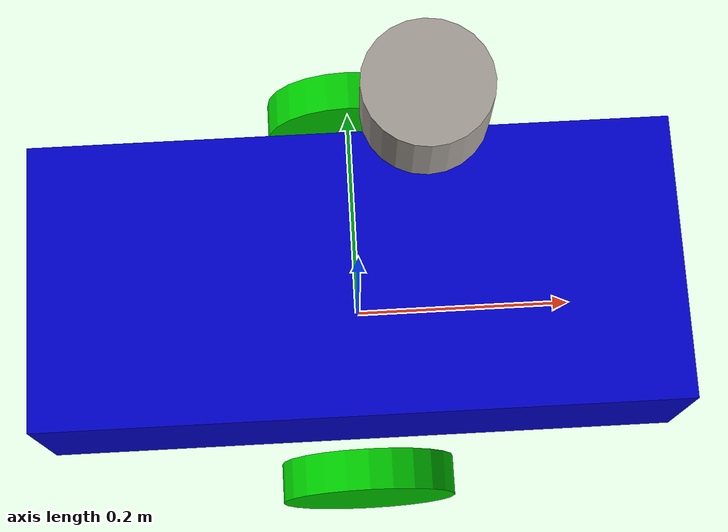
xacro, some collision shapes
<?xml version="1.0"?>
<robot name="a2dr"
    xmlns:xacro="http://ros.org/wiki/xacro">

    <xacro:include filename="$(find a2dr_model)/materials.xacro"/>
    <xacro:include filename="$(find a2dr_model)/sensors/ydlidar/ydlidar_g4.xacro"/>

    <link name="base_footprint"/>

    <joint name="base_fixed" type="fixed">
        <origin xyz="0 0 0.075" rpy="0 0 0"/>
        <parent link="base_footprint"/>
        <child link="base_link"/>
    </joint>

    <link name="base_link">
        <visual>
            <origin xyz="-0.002 0 0.02" rpy="0 0 0" />
            <geometry>
                <box size="0.56 0.25 0.13" />
            </geometry>
            <material name="blue"/>
        </visual>
        <collision name="chessis_collision">
            <origin xyz="-0.002 0 0" rpy="0 0 0" />
            <geometry>
                <box size="0.56 0.25 0.13" />
            </geometry>
            <surface>
                <friction>
                    <ode>
                        <mu>0.1</mu>
                        <mu2>0.1</mu2>
                        <slip1>1.0</slip1>
                        <slip2>1.0</slip2>
                    </ode>
                </friction>
            </surface>
        </collision>

        <inertial>
            <mass value="10.0"/>
            <origin xyz="-0.11 0 0" rpy=" 0 0 0"/>
            <xacro:box_inertia m="10.0" x="0.56" y="0.25" z="0.13"/>
        </inertial>
    </link>

    <joint name="right_wheel_joint" type="fixed">
        <origin xyz="0 -0.168 0" rpy="${PI/2} 0 0"/>
        <parent link="base_link"/>
        <child link="right_wheel"/>
    </joint>

    <joint name="left_wheel_joint" type="fixed">
        <origin xyz="0 0.168 0" rpy="-${PI/2} 0 0"/>
        <parent link="base_link"/>
        <child link="left_wheel"/>
    </joint>

    <link name="right_wheel">
        <visual>
            <origin xyz="0 0 0" rpy="0 0 0" />
            <geometry>
                <cylinder radius="0.075" length="0.034"/>
            </geometry>
            <material name="green"/>
        </visual>
        <collision name="right_wheel_collision">
            <origin xyz="0 0 0" rpy="0 0 0" />
            <geometry>
                <cylinder radius="0.075" length="0.034"/>
            </geometry>
            <surface>
                <friction>
                    <ode>
                        <mu>0.1</mu>
                        <mu2>0.1</mu2>
                        <slip1>1.0</slip1>
                        <slip2>1.0</slip2>
                    </ode>
                </friction>
            </surface>
        </collision>

        <inertial>
            <mass value="1.0"/>
            <origin xyz="0 0 0" rpy=" 0 0 0"/>
            <xacro:box_inertia m="1.0" x="0.1" y="0.1" z="0.1"/>
        </inertial>
    </link>

    <link name="left_wheel">
        <visual>
            <origin xyz="0 0 0" rpy="0 0 0" />
            <geometry>
                <cylinder radius="0.075" length="0.034"/>
            </geometry>
            <material name="green"/>
        </visual>
        <collision name="left_wheel_collision">
            <origin xyz="0 0 0" rpy="0 0 0" />
            <geometry>
                <cylinder radius="0.075" length="0.034"/>
            </geometry>
            <surface>
                <friction>
                    <ode>
                        <mu>0.1</mu>
                        <mu2>0.1</mu2>
                        <slip1>1.0</slip1>
                        <slip2>1.0</slip2>
                    </ode>
                </friction>
            </surface>
        </collision>

        <inertial>
            <mass value="1.0"/>
            <origin xyz="0 0 0" rpy=" 0 0 0"/>
            <xacro:box_inertia m="1.0" x="0.1" y="0.1" z="0.1"/>
        </inertial>
    </link>

    <xacro:ydlidar_g4 prefix="laser" parent="base_link" prefix_topic='' visual='true' min_angle="-${PI}" max_angle="${PI}" min_range="0.26" max_range="12.0">
        <origin xyz="0.04 0 0.46" rpy="0 0 0"/>
    </xacro:ydlidar_g4>

</robot>

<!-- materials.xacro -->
<robot name="materials"
    xmlns:xacro="http://ros.org/wiki/xacro">

    <xacro:property name="PI" value="3.14159"/>

    <material name="black">
        <color rgba="0.0 0.0 0.0 1.0"/>
    </material>
    <material name="light_black">
        <color rgba="0.64706 0.61961 0.58824 1"/>
    </material>
    <material name="blue">
        <color rgba="0.0 0.0 0.8 1.0"/>
    </material>
    <material name="green">
        <color rgba="0.0 0.8 0.0 1.0"/>
    </material>
    <material name="grey">
        <color rgba="0.2 0.2 0.2 1.0"/>
    </material>
    <material name="orange">
        <color rgba="${255/255} ${108/255} ${10/255} 1.0"/>
    </material>
    <material name="brown">
        <color rgba="${222/255} ${207/255} ${195/255} 1.0"/>
    </material>
    <material name="red">
        <color rgba="0.8 0.0 0.0 1.0"/>
    </material>
    <material name="white">
        <color rgba="1.0 1.0 1.0 1.0"/>
    </material>

    <material name="aluminum">
        <color rgba="0.5 0.5 0.5 1.0"/>
    </material>

    <xacro:macro name="cylinder_inertia" params="m r h">
        <inertia ixx="${m*(3*r*r+h*h)/12}" ixy = "0" ixz = "0" iyy="${m*(3*r*r+h*h)/12}" iyz = "0" izz="${m*r*r/2}" />
    </xacro:macro>

    <xacro:macro name="box_inertia" params="m x y z">
        <inertia ixx="${m*(y*y+z*z)/12}" ixy = "0" ixz = "0" iyy="${m*(x*x+z*z)/12}" iyz = "0" izz="${m*(x*x+z*z)/12}" />
    </xacro:macro>

    <xacro:macro name="sphere_inertia" params="m r">
        <inertia ixx="${2*m*r*r/5}" ixy = "0" ixz = "0" iyy="${2*m*r*r/5}" iyz = "0" izz="${2*m*r*r/5}" />
    </xacro:macro>
</robot>

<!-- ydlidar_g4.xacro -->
<robot name="ydlidar_g4"
    xmlns:xacro="http://ros.org/wiki/xacro">

    <xacro:macro name="ydlidar_g4" params="prefix parent prefix_topic *origin visual min_angle max_angle min_range:=0.26 max_range:=16.0">
        <joint name="${prefix}_base_fixed" type="fixed">
            <xacro:insert_block name="origin"/>
            <parent link="${parent}"/>
            <child link="${prefix}_base_link"/>
        </joint>

        <link name="${prefix}_base_link">
            <visual>
                <origin xyz="0 0 0" rpy="0 0 0"/>
                <geometry>
                    <mesh filename="package://a2dr_model/sensors/ydlidar/meshes/ydlidar_g4.dae" />
                </geometry>
                <material name="light_black"/>
            </visual>
            <collision>
                <origin xyz="0 0 0.02" rpy="0 0 0"/>
                <geometry>
                    <cylinder length="0.05" radius="0.040"/>
                </geometry>
            </collision>
            <inertial>
                <origin xyz="-0.00029774 0.0066667 0.00013047" rpy="0 0 0"/>
                <mass value="0.15717" />
                <inertia ixx="6.7885E-05" ixy="-1.3987E-07" ixz="-8.1554E-07" iyy="0.00013173" iyz="-9.0932E-08" izz="7.1972E-05"/>
            </inertial>
        </link>
        <joint name="${prefix}_fixed" type="fixed">
            <origin xyz="0 0 0.03172" rpy="0 0 0"/>
            <parent link="${prefix}_base_link"/>
            <child link="${prefix}_frame"/>
        </joint>

        <link name="${prefix}_frame">
            <inertial>
                <origin xyz="-0.00036659 0.00064155 -0.00027052" rpy="0 0 0" />
                <mass value="0.25482" />
                <inertia ixx="8.9194E-05" ixy="1.8116E-07" ixz="3.6435E-08" iyy="0.00018279" iyz="2.423E-07" izz="0.00011103" />
            </inertial>
        </link>

        <gazebo reference="${prefix}_frame">
            <sensor type="ray" name="${prefix}_sensor">
                <pose>0 0 0 0 0 0</pose>
                <visualize>${visual}</visualize>
                <update_rate>20</update_rate>
                <ray>
                    <scan>
                        <horizontal>
                            <!-- 180 deg -> 640 -->
                            <samples>${(max_angle-min_angle)*203.78}</samples>
                            <resolution>1</resolution>
                            <min_angle>${min_angle}</min_angle>
                            <max_angle>${max_angle}</max_angle>
                        </horizontal>
                    </scan>
                    <range>
                        <min>${min_range}</min>
                        <max>${max_range}</max>
                        <resolution>0.03</resolution>
                    </range>
                    <noise>
                        <type>gaussian</type>
                        <mean>0.0</mean>
                        <stddev>0.01</stddev>
                    </noise>
                </ray>
                <plugin name="${prefix}_gazebo_plugin" filename="libgazebo_ros_laser.so">
                    <robotNamespace>/eleven</robotNamespace>
                    <topicName>${prefix_topic}/scan</topicName>
                    <frameName>${prefix}_frame</frameName>
                </plugin>
            </sensor>
        </gazebo>
    </xacro:macro>

</robot>
